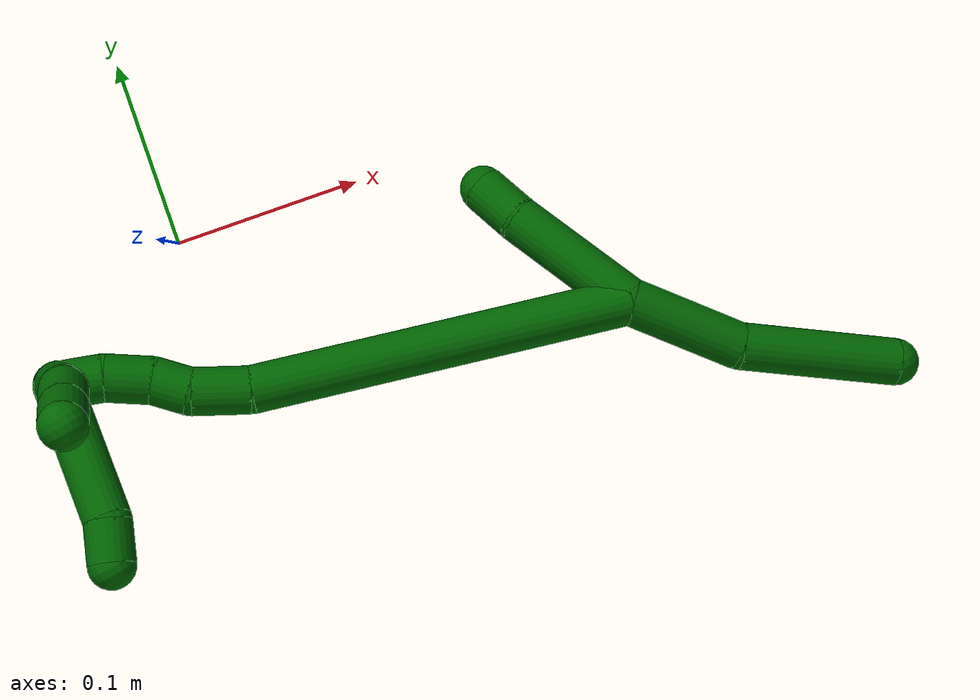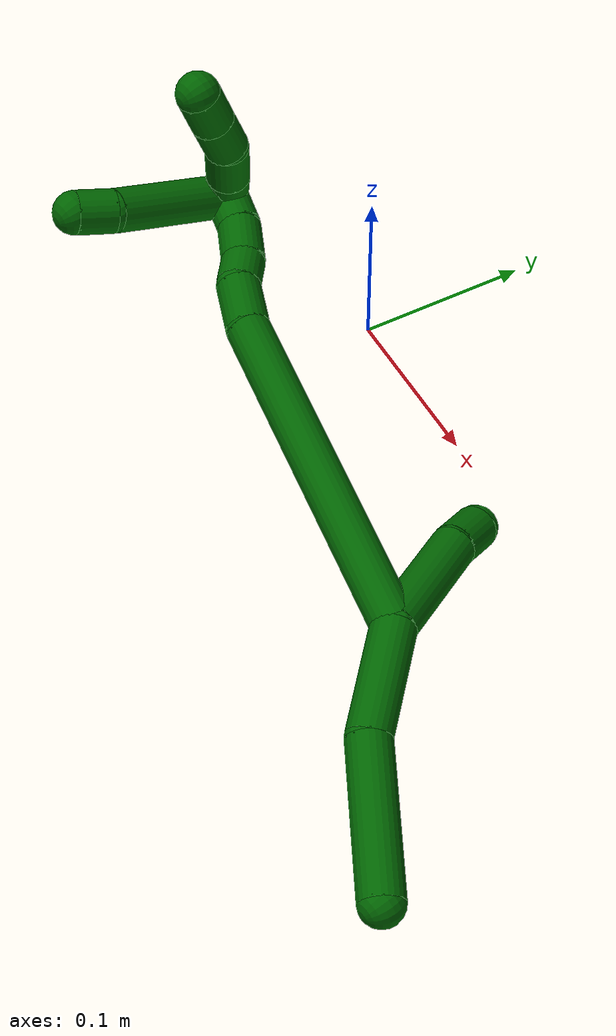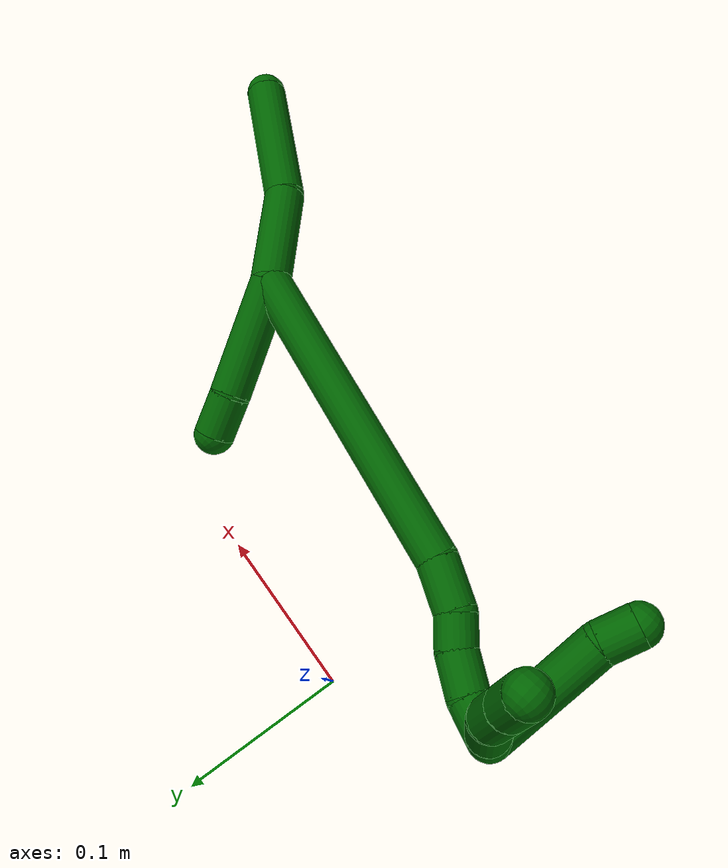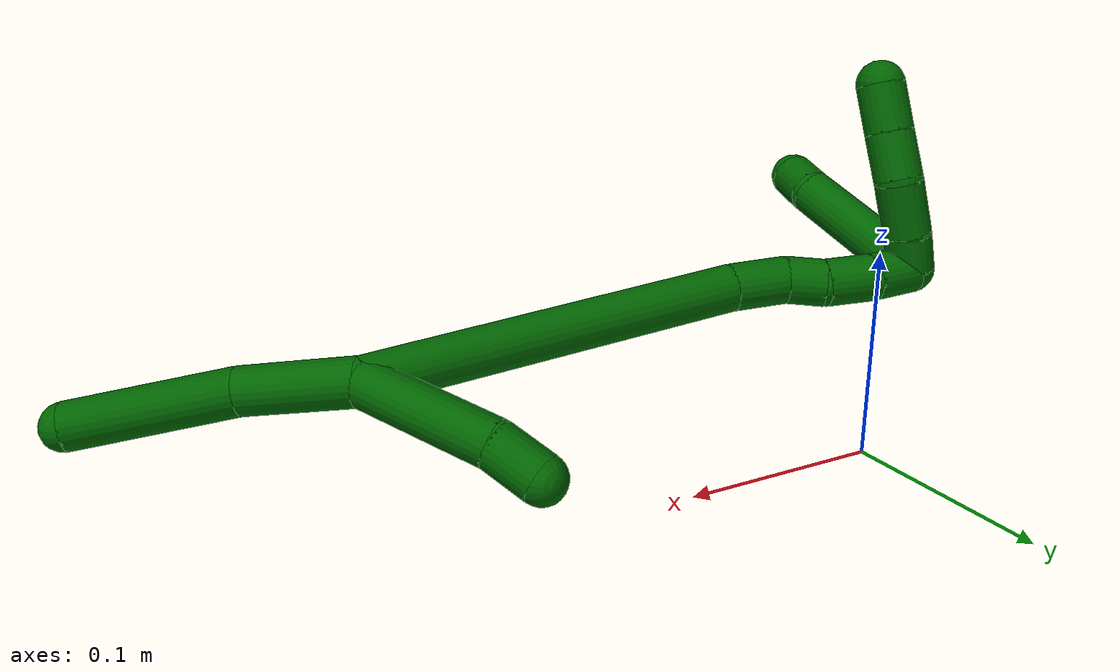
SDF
<sdf version="1.7">
 <world name="default">
  <model name="photoneo_s_sensor">
   <static>1</static>
   <pose>0 0 2 1.57079 1.57079 3.14159</pose>
   <link name="link">
    <inertial><mass>0.1</mass></inertial>
    <sensor name="sensor" type="depth">
     <update_rate>30</update_rate>
     <camera>
      <horizontal_fov>1.22</horizontal_fov>
      <image><width>1920</width><height>1200</height><format>B8G8R8</format></image>
      <clip><near>0.1</near><far>4</far></clip>
      <depth_camera><output>points</output></depth_camera>
     </camera>
     <plugin name="camera_plugin" filename="libgazebo_ros_depth_camera.so">
      <baseline>0.2</baseline>
      <alwaysOn>1</alwaysOn>
      <updateRate>0.0</updateRate>
      <cameraName>camera_ir</cameraName>
      <imageTopicName>/camera/color/image_raw</imageTopicName>
      <cameraInfoTopicName>/camera/color/camera_info</cameraInfoTopicName>
      <depthImageTopicName>/camera/depth/image_raw</depthImageTopicName>
      <depthImageCameraInfoTopicName>/camera/depth/camera_info</depthImageCameraInfoTopicName>
      <pointCloudTopicName>/camera/depth/points</pointCloudTopicName>
      <frameName>fr_optical</frameName>
      <pointCloudCutoff>0.1</pointCloudCutoff>
      <pointCloudCutoffMax>2.0</pointCloudCutoffMax>
      <distortionK1>0</distortionK1>
      <distortionK2>0</distortionK2>
      <distortionK3>0</distortionK3>
      <distortionT1>0</distortionT1>
      <distortionT2>0</distortionT2>
      <CxPrime>0</CxPrime>
      <Cx>0</Cx>
      <Cy>0</Cy>
      <focalLength>0</focalLength>
      <hackBaseline>0</hackBaseline>
     </plugin>
    </sensor>
   </link>
  </model>
  <model name="bin">
   <static>1</static>
   <link name="bottom">
    <collision name="collision-bottom">
     <pose>0 0 -0.01 0 -0 0</pose>
     <geometry><box><size>0.8 0.6 0.02</size></box></geometry>
     <surface>
      <friction><ode><mu>100</mu><mu2>100</mu2></ode></friction>
      <contact><collide_bitmask>65535</collide_bitmask></contact>
     </surface>
    </collision>
   </link>
   <link name="west_wall">
    <collision name="collision-west_wall">
     <pose>-0.41 0 0.1 0 -0 0</pose>
     <geometry><box><size>0.02 0.6 0.2</size></box></geometry>
     <surface>
      <friction><ode><mu>100</mu><mu2>100</mu2></ode></friction>
      <contact><collide_bitmask>65535</collide_bitmask></contact>
     </surface>
    </collision>
   </link>
   <link name="east_wall">
    <collision name="collision-east_wall">
     <pose>0.41 0 0.1 0 -0 0</pose>
     <geometry><box><size>0.02 0.6 0.2</size></box></geometry>
     <surface>
      <friction><ode><mu>100</mu><mu2>100</mu2></ode></friction>
      <contact><collide_bitmask>65535</collide_bitmask></contact>
     </surface>
    </collision>
   </link>
   <link name="south_wall">
    <collision name="collision-south_wall">
     <pose>0 -0.31 0.1 0 -0 0</pose>
     <geometry><box><size>0.8 0.02 0.2</size></box></geometry>
     <surface>
      <friction><ode><mu>100</mu><mu2>100</mu2></ode></friction>
      <contact><collide_bitmask>65535</collide_bitmask></contact>
     </surface>
    </collision>
   </link>
   <link name="north_wall">
    <collision name="collision-north_wall">
     <pose>0 0.31 0.1 0 -0 0</pose>
     <geometry><box><size>0.8 0.02 0.2</size></box></geometry>
     <surface>
      <friction><ode><mu>100</mu><mu2>100</mu2></ode></friction>
      <contact><collide_bitmask>65535</collide_bitmask></contact>
     </surface>
    </collision>
   </link>
  </model>
  <model name="6">
   <static>0</static>
   <link name="6">
    <collision name="collision-cylinder-e_1_2_8">
     <pose>0.018826 -0.007289 0.024678 0.28719 0.631625 0.094419</pose>
     <geometry><cylinder><radius>0.0125</radius><length>0.063766</length></cylinder></geometry>
     <surface>
      <friction><ode><mu>1.16</mu><mu2>1.16</mu2><slip1>0</slip1><slip2>0</slip2></ode></friction>
      <contact><ode><kp>1e+06</kp><kd>1</kd><max_vel>0</max_vel><min_depth>0.001</min_depth></ode></contact>
     </surface>
    </collision>
    <visual name="visual-cylinder-e_1_2_8">
     <pose>0.018826 -0.007289 0.024678 0.28719 0.631625 0.094419</pose>
     <geometry><cylinder><radius>0.0125</radius><length>0.063766</length></cylinder></geometry>
     <material><ambient>0 0.392157 0.003922 1</ambient></material>
    </visual>
    <collision name="collision-cylinder-e_2_8_6">
     <pose>0.070701 -0.02732 0.073941 0.478174 0.873392 0.226566</pose>
     <geometry><cylinder><radius>0.0125</radius><length>0.086234</length></cylinder></geometry>
     <surface>
      <friction><ode><mu>1.16</mu><mu2>1.16</mu2><slip1>0</slip1><slip2>0</slip2></ode></friction>
      <contact><ode><kp>1e+06</kp><kd>1</kd><max_vel>0</max_vel><min_depth>0.001</min_depth></ode></contact>
     </surface>
    </collision>
    <visual name="visual-cylinder-e_2_8_6">
     <pose>0.070701 -0.02732 0.073941 0.478174 0.873392 0.226566</pose>
     <geometry><cylinder><radius>0.0125</radius><length>0.086234</length></cylinder></geometry>
     <material><ambient>0 0.392157 0.003922 1</ambient></material>
    </visual>
    <collision name="collision-cylinder-e_1_2_9">
     <pose>-0.016127 -0.007553 -0.032068 2.91029 -0.455222 -2.21184</pose>
     <geometry><cylinder><radius>0.0125</radius><length>0.073362</length></cylinder></geometry>
     <surface>
      <friction><ode><mu>1.16</mu><mu2>1.16</mu2><slip1>0</slip1><slip2>0</slip2></ode></friction>
      <contact><ode><kp>1e+06</kp><kd>1</kd><max_vel>0</max_vel><min_depth>0.001</min_depth></ode></contact>
     </surface>
    </collision>
    <visual name="visual-cylinder-e_1_2_9">
     <pose>-0.016127 -0.007553 -0.032068 2.91029 -0.455222 -2.21184</pose>
     <geometry><cylinder><radius>0.0125</radius><length>0.073362</length></cylinder></geometry>
     <material><ambient>0 0.392157 0.003922 1</ambient></material>
    </visual>
    <collision name="collision-cylinder-e_2_9_5">
     <pose>-0.03731 -0.02018 -0.075365 2.71709 -0.389313 -1.48194</pose>
     <geometry><cylinder><radius>0.0125</radius><length>0.026638</length></cylinder></geometry>
     <surface>
      <friction><ode><mu>1.16</mu><mu2>1.16</mu2><slip1>0</slip1><slip2>0</slip2></ode></friction>
      <contact><ode><kp>1e+06</kp><kd>1</kd><max_vel>0</max_vel><min_depth>0.001</min_depth></ode></contact>
     </surface>
    </collision>
    <visual name="visual-cylinder-e_2_9_5">
     <pose>-0.03731 -0.02018 -0.075365 2.71709 -0.389313 -1.48194</pose>
     <geometry><cylinder><radius>0.0125</radius><length>0.026638</length></cylinder></geometry>
     <material><ambient>0 0.392157 0.003922 1</ambient></material>
    </visual>
    <collision name="collision-cylinder-e_1_2_10">
     <pose>-0.092859 0.025966 -0.027724 -2.38892 -1.18251 2.07761</pose>
     <geometry><cylinder><radius>0.0125</radius><length>0.200655</length></cylinder></geometry>
     <surface>
      <friction><ode><mu>1.16</mu><mu2>1.16</mu2><slip1>0</slip1><slip2>0</slip2></ode></friction>
      <contact><ode><kp>1e+06</kp><kd>1</kd><max_vel>0</max_vel><min_depth>0.001</min_depth></ode></contact>
     </surface>
    </collision>
    <visual name="visual-cylinder-e_1_2_10">
     <pose>-0.092859 0.025966 -0.027724 -2.38892 -1.18251 2.07761</pose>
     <geometry><cylinder><radius>0.0125</radius><length>0.200655</length></cylinder></geometry>
     <material><ambient>0 0.392157 0.003922 1</ambient></material>
    </visual>
    <collision name="collision-cylinder-e_2_10_11">
     <pose>-0.198783 0.055184 -0.062465 -2.70756 -1.03626 2.4035</pose>
     <geometry><cylinder><radius>0.0125</radius><length>0.030366</length></cylinder></geometry>
     <surface>
      <friction><ode><mu>1.16</mu><mu2>1.16</mu2><slip1>0</slip1><slip2>0</slip2></ode></friction>
      <contact><ode><kp>1e+06</kp><kd>1</kd><max_vel>0</max_vel><min_depth>0.001</min_depth></ode></contact>
     </surface>
    </collision>
    <visual name="visual-cylinder-e_2_10_11">
     <pose>-0.198783 0.055184 -0.062465 -2.70756 -1.03626 2.4035</pose>
     <geometry><cylinder><radius>0.0125</radius><length>0.030366</length></cylinder></geometry>
     <material><ambient>0 0.392157 0.003922 1</ambient></material>
    </visual>
    <collision name="collision-cylinder-e_3_11_12">
     <pose>-0.219056 0.058774 -0.076631 -3.09455 -0.789002 3.0287</pose>
     <geometry><cylinder><radius>0.0125</radius><length>0.020314</length></cylinder></geometry>
     <surface>
      <friction><ode><mu>1.16</mu><mu2>1.16</mu2><slip1>0</slip1><slip2>0</slip2></ode></friction>
      <contact><ode><kp>1e+06</kp><kd>1</kd><max_vel>0</max_vel><min_depth>0.001</min_depth></ode></contact>
     </surface>
    </collision>
    <visual name="visual-cylinder-e_3_11_12">
     <pose>-0.219056 0.058774 -0.076631 -3.09455 -0.789002 3.0287</pose>
     <geometry><cylinder><radius>0.0125</radius><length>0.020314</length></cylinder></geometry>
     <material><ambient>0 0.392157 0.003922 1</ambient></material>
    </visual>
    <collision name="collision-cylinder-e_4_12_13">
     <pose>-0.236486 0.061659 -0.090431 -2.7757 -0.962157 2.46033</pose>
     <geometry><cylinder><radius>0.0125</radius><length>0.02492</length></cylinder></geometry>
     <surface>
      <friction><ode><mu>1.16</mu><mu2>1.16</mu2><slip1>0</slip1><slip2>0</slip2></ode></friction>
      <contact><ode><kp>1e+06</kp><kd>1</kd><max_vel>0</max_vel><min_depth>0.001</min_depth></ode></contact>
     </surface>
    </collision>
    <visual name="visual-cylinder-e_4_12_13">
     <pose>-0.236486 0.061659 -0.090431 -2.7757 -0.962157 2.46033</pose>
     <geometry><cylinder><radius>0.0125</radius><length>0.02492</length></cylinder></geometry>
     <material><ambient>0 0.392157 0.003922 1</ambient></material>
    </visual>
    <collision name="collision-cylinder-e_5_13_1">
     <pose>-0.257507 0.067111 -0.101076 -2.51282 -1.14201 2.20443</pose>
     <geometry><cylinder><radius>0.0125</radius><length>0.023745</length></cylinder></geometry>
     <surface>
      <friction><ode><mu>1.16</mu><mu2>1.16</mu2><slip1>0</slip1><slip2>0</slip2></ode></friction>
      <contact><ode><kp>1e+06</kp><kd>1</kd><max_vel>0</max_vel><min_depth>0.001</min_depth></ode></contact>
     </surface>
    </collision>
    <visual name="visual-cylinder-e_5_13_1">
     <pose>-0.257507 0.067111 -0.101076 -2.51282 -1.14201 2.20443</pose>
     <geometry><cylinder><radius>0.0125</radius><length>0.023745</length></cylinder></geometry>
     <material><ambient>0 0.392157 0.003922 1</ambient></material>
    </visual>
    <collision name="collision-cylinder-e_1_1_14">
     <pose>-0.268735 0.086133 -0.069739 -0.428029 -0.011101 0.002413</pose>
     <geometry><cylinder><radius>0.0125</radius><length>0.077671</length></cylinder></geometry>
     <surface>
      <friction><ode><mu>1.16</mu><mu2>1.16</mu2><slip1>0</slip1><slip2>0</slip2></ode></friction>
      <contact><ode><kp>1e+06</kp><kd>1</kd><max_vel>0</max_vel><min_depth>0.001</min_depth></ode></contact>
     </surface>
    </collision>
    <visual name="visual-cylinder-e_1_1_14">
     <pose>-0.268735 0.086133 -0.069739 -0.428029 -0.011101 0.002413</pose>
     <geometry><cylinder><radius>0.0125</radius><length>0.077671</length></cylinder></geometry>
     <material><ambient>0 0.392157 0.003922 1</ambient></material>
    </visual>
    <collision name="collision-cylinder-e_2_14_4">
     <pose>-0.27258 0.105945 -0.024441 -0.354817 -0.310752 0.056154</pose>
     <geometry><cylinder><radius>0.0125</radius><length>0.022329</length></cylinder></geometry>
     <surface>
      <friction><ode><mu>1.16</mu><mu2>1.16</mu2><slip1>0</slip1><slip2>0</slip2></ode></friction>
      <contact><ode><kp>1e+06</kp><kd>1</kd><max_vel>0</max_vel><min_depth>0.001</min_depth></ode></contact>
     </surface>
    </collision>
    <visual name="visual-cylinder-e_2_14_4">
     <pose>-0.27258 0.105945 -0.024441 -0.354817 -0.310752 0.056154</pose>
     <geometry><cylinder><radius>0.0125</radius><length>0.022329</length></cylinder></geometry>
     <material><ambient>0 0.392157 0.003922 1</ambient></material>
    </visual>
    <collision name="collision-cylinder-e_1_1_15">
     <pose>-0.264747 0.079367 -0.105081 -1.5722 0.363478 -0.363977</pose>
     <geometry><cylinder><radius>0.0125</radius><length>0.020012</length></cylinder></geometry>
     <surface>
      <friction><ode><mu>1.16</mu><mu2>1.16</mu2><slip1>0</slip1><slip2>0</slip2></ode></friction>
      <contact><ode><kp>1e+06</kp><kd>1</kd><max_vel>0</max_vel><min_depth>0.001</min_depth></ode></contact>
     </surface>
    </collision>
    <visual name="visual-cylinder-e_1_1_15">
     <pose>-0.264747 0.079367 -0.105081 -1.5722 0.363478 -0.363977</pose>
     <geometry><cylinder><radius>0.0125</radius><length>0.020012</length></cylinder></geometry>
     <material><ambient>0 0.392157 0.003922 1</ambient></material>
    </visual>
    <collision name="collision-cylinder-e_2_15_16">
     <pose>-0.25598 0.102382 -0.103803 -1.47655 0.362777 -0.330724</pose>
     <geometry><cylinder><radius>0.0125</radius><length>0.02936</length></cylinder></geometry>
     <surface>
      <friction><ode><mu>1.16</mu><mu2>1.16</mu2><slip1>0</slip1><slip2>0</slip2></ode></friction>
      <contact><ode><kp>1e+06</kp><kd>1</kd><max_vel>0</max_vel><min_depth>0.001</min_depth></ode></contact>
     </surface>
    </collision>
    <visual name="visual-cylinder-e_2_15_16">
     <pose>-0.25598 0.102382 -0.103803 -1.47655 0.362777 -0.330724</pose>
     <geometry><cylinder><radius>0.0125</radius><length>0.02936</length></cylinder></geometry>
     <material><ambient>0 0.392157 0.003922 1</ambient></material>
    </visual>
    <collision name="collision-cylinder-e_3_16_17">
     <pose>-0.248943 0.128099 -0.098893 -1.27911 0.144238 -0.107375</pose>
     <geometry><cylinder><radius>0.0125</radius><length>0.025433</length></cylinder></geometry>
     <surface>
      <friction><ode><mu>1.16</mu><mu2>1.16</mu2><slip1>0</slip1><slip2>0</slip2></ode></friction>
      <contact><ode><kp>1e+06</kp><kd>1</kd><max_vel>0</max_vel><min_depth>0.001</min_depth></ode></contact>
     </surface>
    </collision>
    <visual name="visual-cylinder-e_3_16_17">
     <pose>-0.248943 0.128099 -0.098893 -1.27911 0.144238 -0.107375</pose>
     <geometry><cylinder><radius>0.0125</radius><length>0.025433</length></cylinder></geometry>
     <material><ambient>0 0.392157 0.003922 1</ambient></material>
    </visual>
    <collision name="collision-cylinder-e_4_17_3">
     <pose>-0.245351 0.152138 -0.091822 -1.29041 0.14048 -0.10581</pose>
     <geometry><cylinder><radius>0.0125</radius><length>0.025195</length></cylinder></geometry>
     <surface>
      <friction><ode><mu>1.16</mu><mu2>1.16</mu2><slip1>0</slip1><slip2>0</slip2></ode></friction>
      <contact><ode><kp>1e+06</kp><kd>1</kd><max_vel>0</max_vel><min_depth>0.001</min_depth></ode></contact>
     </surface>
    </collision>
    <visual name="visual-cylinder-e_4_17_3">
     <pose>-0.245351 0.152138 -0.091822 -1.29041 0.14048 -0.10581</pose>
     <geometry><cylinder><radius>0.0125</radius><length>0.025195</length></cylinder></geometry>
     <material><ambient>0 0.392157 0.003922 1</ambient></material>
    </visual>
    <collision name="collision-sphere-3">
     <pose>-0.243587 0.164124 -0.08837 0 -0 0</pose>
     <geometry><sphere><radius>0.0125</radius></sphere></geometry>
     <surface>
      <friction><ode><mu>1.16</mu><mu2>1.16</mu2><slip1>0</slip1><slip2>0</slip2></ode></friction>
      <contact><ode><kp>1e+06</kp><kd>1</kd><max_vel>0</max_vel><min_depth>0.001</min_depth></ode></contact>
     </surface>
    </collision>
    <visual name="visual-sphere-3">
     <pose>-0.243587 0.164124 -0.08837 0 -0 0</pose>
     <geometry><sphere><radius>0.0125</radius></sphere></geometry>
     <material><ambient>0 0.392157 0.003922 1</ambient></material>
    </visual>
    <collision name="collision-sphere-17">
     <pose>-0.247115 0.140152 -0.095274 0 -0 0</pose>
     <geometry><sphere><radius>0.0125</radius></sphere></geometry>
     <surface>
      <friction><ode><mu>1.16</mu><mu2>1.16</mu2><slip1>0</slip1><slip2>0</slip2></ode></friction>
      <contact><ode><kp>1e+06</kp><kd>1</kd><max_vel>0</max_vel><min_depth>0.001</min_depth></ode></contact>
     </surface>
    </collision>
    <visual name="visual-sphere-17">
     <pose>-0.247115 0.140152 -0.095274 0 -0 0</pose>
     <geometry><sphere><radius>0.0125</radius></sphere></geometry>
     <material><ambient>0 0.392157 0.003922 1</ambient></material>
    </visual>
    <collision name="collision-sphere-16">
     <pose>-0.250771 0.116046 -0.102511 0 -0 0</pose>
     <geometry><sphere><radius>0.0125</radius></sphere></geometry>
     <surface>
      <friction><ode><mu>1.16</mu><mu2>1.16</mu2><slip1>0</slip1><slip2>0</slip2></ode></friction>
      <contact><ode><kp>1e+06</kp><kd>1</kd><max_vel>0</max_vel><min_depth>0.001</min_depth></ode></contact>
     </surface>
    </collision>
    <visual name="visual-sphere-16">
     <pose>-0.250771 0.116046 -0.102511 0 -0 0</pose>
     <geometry><sphere><radius>0.0125</radius></sphere></geometry>
     <material><ambient>0 0.392157 0.003922 1</ambient></material>
    </visual>
    <collision name="collision-sphere-15">
     <pose>-0.261189 0.088719 -0.105094 0 -0 0</pose>
     <geometry><sphere><radius>0.0125</radius></sphere></geometry>
     <surface>
      <friction><ode><mu>1.16</mu><mu2>1.16</mu2><slip1>0</slip1><slip2>0</slip2></ode></friction>
      <contact><ode><kp>1e+06</kp><kd>1</kd><max_vel>0</max_vel><min_depth>0.001</min_depth></ode></contact>
     </surface>
    </collision>
    <visual name="visual-sphere-15">
     <pose>-0.261189 0.088719 -0.105094 0 -0 0</pose>
     <geometry><sphere><radius>0.0125</radius></sphere></geometry>
     <material><ambient>0 0.392157 0.003922 1</ambient></material>
    </visual>
    <collision name="collision-sphere-4">
     <pose>-0.275994 0.109638 -0.014473 0 -0 0</pose>
     <geometry><sphere><radius>0.0125</radius></sphere></geometry>
     <surface>
      <friction><ode><mu>1.16</mu><mu2>1.16</mu2><slip1>0</slip1><slip2>0</slip2></ode></friction>
      <contact><ode><kp>1e+06</kp><kd>1</kd><max_vel>0</max_vel><min_depth>0.001</min_depth></ode></contact>
     </surface>
    </collision>
    <visual name="visual-sphere-4">
     <pose>-0.275994 0.109638 -0.014473 0 -0 0</pose>
     <geometry><sphere><radius>0.0125</radius></sphere></geometry>
     <material><ambient>0 0.392157 0.003922 1</ambient></material>
    </visual>
    <collision name="collision-sphere-14">
     <pose>-0.269167 0.102252 -0.034409 0 -0 0</pose>
     <geometry><sphere><radius>0.0125</radius></sphere></geometry>
     <surface>
      <friction><ode><mu>1.16</mu><mu2>1.16</mu2><slip1>0</slip1><slip2>0</slip2></ode></friction>
      <contact><ode><kp>1e+06</kp><kd>1</kd><max_vel>0</max_vel><min_depth>0.001</min_depth></ode></contact>
     </surface>
    </collision>
    <visual name="visual-sphere-14">
     <pose>-0.269167 0.102252 -0.034409 0 -0 0</pose>
     <geometry><sphere><radius>0.0125</radius></sphere></geometry>
     <material><ambient>0 0.392157 0.003922 1</ambient></material>
    </visual>
    <collision name="collision-sphere-1">
     <pose>-0.268304 0.070014 -0.105068 0 -0 0</pose>
     <geometry><sphere><radius>0.0125</radius></sphere></geometry>
     <surface>
      <friction><ode><mu>1.16</mu><mu2>1.16</mu2><slip1>0</slip1><slip2>0</slip2></ode></friction>
      <contact><ode><kp>1e+06</kp><kd>1</kd><max_vel>0</max_vel><min_depth>0.001</min_depth></ode></contact>
     </surface>
    </collision>
    <visual name="visual-sphere-1">
     <pose>-0.268304 0.070014 -0.105068 0 -0 0</pose>
     <geometry><sphere><radius>0.0125</radius></sphere></geometry>
     <material><ambient>0 0.392157 0.003922 1</ambient></material>
    </visual>
    <collision name="collision-sphere-13">
     <pose>-0.246709 0.064208 -0.097084 0 -0 0</pose>
     <geometry><sphere><radius>0.0125</radius></sphere></geometry>
     <surface>
      <friction><ode><mu>1.16</mu><mu2>1.16</mu2><slip1>0</slip1><slip2>0</slip2></ode></friction>
      <contact><ode><kp>1e+06</kp><kd>1</kd><max_vel>0</max_vel><min_depth>0.001</min_depth></ode></contact>
     </surface>
    </collision>
    <visual name="visual-sphere-13">
     <pose>-0.246709 0.064208 -0.097084 0 -0 0</pose>
     <geometry><sphere><radius>0.0125</radius></sphere></geometry>
     <material><ambient>0 0.392157 0.003922 1</ambient></material>
    </visual>
    <collision name="collision-sphere-12">
     <pose>-0.226263 0.05911 -0.083779 0 -0 0</pose>
     <geometry><sphere><radius>0.0125</radius></sphere></geometry>
     <surface>
      <friction><ode><mu>1.16</mu><mu2>1.16</mu2><slip1>0</slip1><slip2>0</slip2></ode></friction>
      <contact><ode><kp>1e+06</kp><kd>1</kd><max_vel>0</max_vel><min_depth>0.001</min_depth></ode></contact>
     </surface>
    </collision>
    <visual name="visual-sphere-12">
     <pose>-0.226263 0.05911 -0.083779 0 -0 0</pose>
     <geometry><sphere><radius>0.0125</radius></sphere></geometry>
     <material><ambient>0 0.392157 0.003922 1</ambient></material>
    </visual>
    <collision name="collision-sphere-11">
     <pose>-0.211848 0.058437 -0.069483 0 -0 0</pose>
     <geometry><sphere><radius>0.0125</radius></sphere></geometry>
     <surface>
      <friction><ode><mu>1.16</mu><mu2>1.16</mu2><slip1>0</slip1><slip2>0</slip2></ode></friction>
      <contact><ode><kp>1e+06</kp><kd>1</kd><max_vel>0</max_vel><min_depth>0.001</min_depth></ode></contact>
     </surface>
    </collision>
    <visual name="visual-sphere-11">
     <pose>-0.211848 0.058437 -0.069483 0 -0 0</pose>
     <geometry><sphere><radius>0.0125</radius></sphere></geometry>
     <material><ambient>0 0.392157 0.003922 1</ambient></material>
    </visual>
    <collision name="collision-sphere-8">
     <pose>0.037651 -0.014577 0.049356 0 -0 0</pose>
     <geometry><sphere><radius>0.0125</radius></sphere></geometry>
     <surface>
      <friction><ode><mu>1.16</mu><mu2>1.16</mu2><slip1>0</slip1><slip2>0</slip2></ode></friction>
      <contact><ode><kp>1e+06</kp><kd>1</kd><max_vel>0</max_vel><min_depth>0.001</min_depth></ode></contact>
     </surface>
    </collision>
    <visual name="visual-sphere-8">
     <pose>0.037651 -0.014577 0.049356 0 -0 0</pose>
     <geometry><sphere><radius>0.0125</radius></sphere></geometry>
     <material><ambient>0 0.392157 0.003922 1</ambient></material>
    </visual>
    <collision name="collision-sphere-2">
     <geometry><sphere><radius>0.0125</radius></sphere></geometry>
     <surface>
      <friction><ode><mu>1.16</mu><mu2>1.16</mu2><slip1>0</slip1><slip2>0</slip2></ode></friction>
      <contact><ode><kp>1e+06</kp><kd>1</kd><max_vel>0</max_vel><min_depth>0.001</min_depth></ode></contact>
     </surface>
    </collision>
    <visual name="visual-sphere-2">
     <geometry><sphere><radius>0.0125</radius></sphere></geometry>
     <material><ambient>0 0.392157 0.003922 1</ambient></material>
    </visual>
    <collision name="collision-sphere-9">
     <pose>-0.032254 -0.015105 -0.064136 0 -0 0</pose>
     <geometry><sphere><radius>0.0125</radius></sphere></geometry>
     <surface>
      <friction><ode><mu>1.16</mu><mu2>1.16</mu2><slip1>0</slip1><slip2>0</slip2></ode></friction>
      <contact><ode><kp>1e+06</kp><kd>1</kd><max_vel>0</max_vel><min_depth>0.001</min_depth></ode></contact>
     </surface>
    </collision>
    <visual name="visual-sphere-9">
     <pose>-0.032254 -0.015105 -0.064136 0 -0 0</pose>
     <geometry><sphere><radius>0.0125</radius></sphere></geometry>
     <material><ambient>0 0.392157 0.003922 1</ambient></material>
    </visual>
    <collision name="collision-sphere-6">
     <pose>0.10375 -0.040062 0.098526 0 -0 0</pose>
     <geometry><sphere><radius>0.0125</radius></sphere></geometry>
     <surface>
      <friction><ode><mu>1.16</mu><mu2>1.16</mu2><slip1>0</slip1><slip2>0</slip2></ode></friction>
      <contact><ode><kp>1e+06</kp><kd>1</kd><max_vel>0</max_vel><min_depth>0.001</min_depth></ode></contact>
     </surface>
    </collision>
    <visual name="visual-sphere-6">
     <pose>0.10375 -0.040062 0.098526 0 -0 0</pose>
     <geometry><sphere><radius>0.0125</radius></sphere></geometry>
     <material><ambient>0 0.392157 0.003922 1</ambient></material>
    </visual>
    <collision name="collision-sphere-5">
     <pose>-0.042365 -0.025256 -0.086594 0 -0 0</pose>
     <geometry><sphere><radius>0.0125</radius></sphere></geometry>
     <surface>
      <friction><ode><mu>1.16</mu><mu2>1.16</mu2><slip1>0</slip1><slip2>0</slip2></ode></friction>
      <contact><ode><kp>1e+06</kp><kd>1</kd><max_vel>0</max_vel><min_depth>0.001</min_depth></ode></contact>
     </surface>
    </collision>
    <visual name="visual-sphere-5">
     <pose>-0.042365 -0.025256 -0.086594 0 -0 0</pose>
     <geometry><sphere><radius>0.0125</radius></sphere></geometry>
     <material><ambient>0 0.392157 0.003922 1</ambient></material>
    </visual>
    <collision name="collision-sphere-10">
     <pose>-0.185718 0.051931 -0.055447 0 -0 0</pose>
     <geometry><sphere><radius>0.0125</radius></sphere></geometry>
     <surface>
      <friction><ode><mu>1.16</mu><mu2>1.16</mu2><slip1>0</slip1><slip2>0</slip2></ode></friction>
      <contact><ode><kp>1e+06</kp><kd>1</kd><max_vel>0</max_vel><min_depth>0.001</min_depth></ode></contact>
     </surface>
    </collision>
    <visual name="visual-sphere-10">
     <pose>-0.185718 0.051931 -0.055447 0 -0 0</pose>
     <geometry><sphere><radius>0.0125</radius></sphere></geometry>
     <material><ambient>0 0.392157 0.003922 1</ambient></material>
    </visual>
    <inertial>
     <pose>-0.117723 0.037385 -0.034696 0 -0 0</pose>
     <mass>0.75</mass>
     <inertia>
      <ixx>0.000153</ixx>
      <ixy>0</ixy>
      <ixz>0</ixz>
      <iyy>0.000989</iyy>
      <iyz>0</iyz>
      <izz>0.000423</izz>
     </inertia>
    </inertial>
   </link>
   <pose>0.214693 -0.107184 0.039045 1.63187 -0.172349 0.159462</pose>
  </model>
 </world>
</sdf>
